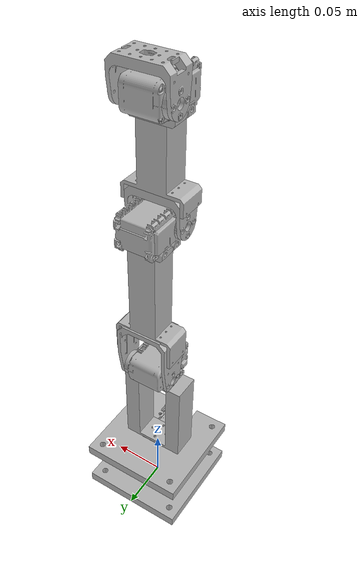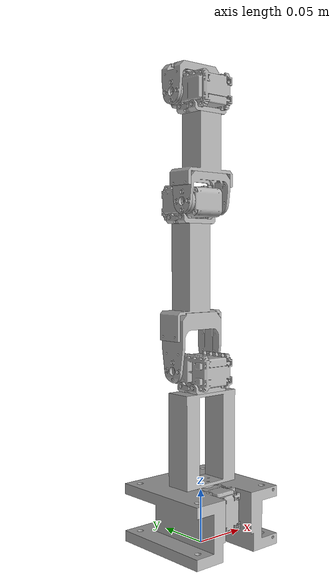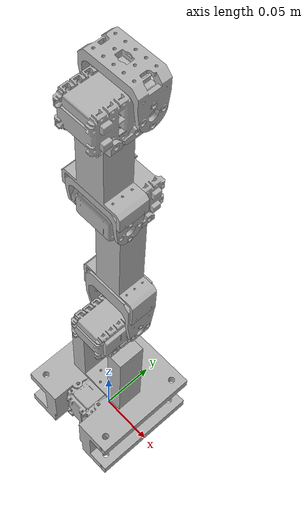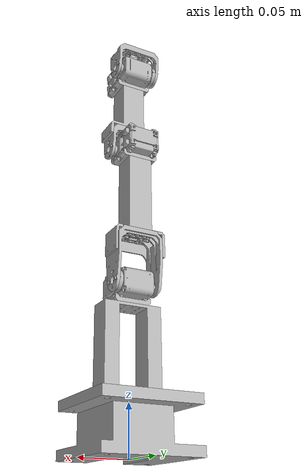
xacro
<?xml version="1.0" ?>
<robot name="project" xmlns:xacro="http://www.ros.org/wiki/xacro">

<xacro:include filename="$(find project_description)/urdf/materials.xacro" />
<xacro:include filename="$(find project_description)/urdf/project.trans" />
<xacro:include filename="$(find project_description)/urdf/project.gazebo" />
<link name="base_link">
   <inertial>
    <origin rpy="0 0 0" xyz="-8.159882890201435e-06 0.0018720901296738887 	0.028401776657947974"/>
    <mass value="0.25731288935459595"/>
    <inertia ixx="0.00028" ixy="-0.0" ixz="0.0" iyy="0.000293" iyz="2e-06" izz="0.000394"/>
  </inertial>
  <visual>
    <origin rpy="0 0 0" xyz="0 0 0"/>
    <geometry>
      <mesh filename="package://project_description/meshes/base_link.stl" scale="0.001 0.001 0.001"/>
    </geometry>
    <material name="silver"/>
  </visual>
  <collision>
    <origin rpy="0 0 0" xyz="0 0 0"/>
    <geometry>
      <mesh filename="package://project_description/meshes/base_link.stl" scale="0.001 0.001 0.001"/>
    </geometry>
  </collision>
</link>

<link name="world"/> <joint name="fixed" type="fixed"> <parent link="world"/> <child link="base_link"/> </joint>

<link name="servo_1_1">
  <inertial>
    <origin rpy="0 0 0" xyz="-0.013531090545161474 -0.006262306013307227 -0.014941431109363447"/>
    <mass value="0.042440875020205084"/>
    <inertia ixx="1.2e-05" ixy="-0.0" ixz="0.0" iyy="7e-06" iyz="-0.0" izz="1e-05"/>
  </inertial>
  <visual>
    <origin rpy="0 0 0" xyz="-0.0135 0.0087 -0.052"/>
    <geometry>
      <mesh filename="package://project_description/meshes/servo_1_1.stl" scale="0.001 0.001 0.001"/>
    </geometry>
    <material name="silver"/>
  </visual>
  <collision>
    <origin rpy="0 0 0" xyz="-0.0135 0.0087 -0.052"/>
    <geometry>
      <mesh filename="package://project_description/meshes/servo_1_1.stl" scale="0.001 0.001 0.001"/>
    </geometry>
  </collision>
</link>

<link name="link_base_1">
  <inertial>
    <origin rpy="0 0 0" xyz="-1.1292332889406204e-16 6.938893903907228e-18 0.04305282835997951"/>
    <mass value="0.5413366704938997"/>
    <inertia ixx="0.000401" ixy="0.0" ixz="0.0" iyy="0.000641" iyz="0.0" izz="0.000297"/>
  </inertial>
  <visual>
    <origin rpy="0 0 0" xyz="0.0 0.0022 -0.057"/>
    <geometry>
      <mesh filename="package://project_description/meshes/link_base_1.stl" scale="0.001 0.001 0.001"/>
    </geometry>
    <material name="silver"/>
  </visual>
  <collision>
    <origin rpy="0 0 0" xyz="0.0 0.0022 -0.057"/>
    <geometry>
      <mesh filename="package://project_description/meshes/link_base_1.stl" scale="0.001 0.001 0.001"/>
    </geometry>
  </collision>
</link>

<link name="lid_1_1">
  <inertial>
    <origin rpy="0 0 0" xyz="0.007999999999997995 -0.0079824826444489 0.0023973587524111772"/>
    <mass value="0.025169985058356388"/>
    <inertia ixx="2e-06" ixy="0.0" ixz="-0.0" iyy="4e-06" iyz="-0.0" izz="5e-06"/>
  </inertial>
  <visual>
    <origin rpy="0 0 0" xyz="0.008 -0.0058 -0.143"/>
    <geometry>
      <mesh filename="package://project_description/meshes/lid_1_1.stl" scale="0.001 0.001 0.001"/>
    </geometry>
    <material name="silver"/>
  </visual>
  <collision>
    <origin rpy="0 0 0" xyz="0.008 -0.0058 -0.143"/>
    <geometry>
      <mesh filename="package://project_description/meshes/lid_1_1.stl" scale="0.001 0.001 0.001"/>
    </geometry>
  </collision>
</link>

<link name="servo_2_1">
  <inertial>
    <origin rpy="0 0 0" xyz="-0.014941431109363601 -0.006262306013307236 0.013531090545161384"/>
    <mass value="0.042440875020205084"/>
    <inertia ixx="1e-05" ixy="-0.0" ixz="-0.0" iyy="7e-06" iyz="0.0" izz="1.2e-05"/>
  </inertial>
  <visual>
    <origin rpy="0 0 0" xyz="-0.016 -0.0058 -0.1485"/>
    <geometry>
      <mesh filename="package://project_description/meshes/servo_2_1.stl" scale="0.001 0.001 0.001"/>
    </geometry>
    <material name="silver"/>
  </visual>
  <collision>
    <origin rpy="0 0 0" xyz="-0.016 -0.0058 -0.1485"/>
    <geometry>
      <mesh filename="package://project_description/meshes/servo_2_1.stl" scale="0.001 0.001 0.001"/>
    </geometry>
  </collision>
</link>

<link name="large_joint_1">
  <inertial>
    <origin rpy="0 0 0" xyz="-0.020999999999999405 -0.0005898483098249752 0.03170002402810718"/>
    <mass value="0.10327033828868784"/>
    <inertia ixx="4.1e-05" ixy="0.0" ixz="0.0" iyy="7.2e-05" iyz="1e-06" izz="4.7e-05"/>
  </inertial>
  <visual>
    <origin rpy="0 0 0" xyz="-0.021 -0.0123 -0.162"/>
    <geometry>
      <mesh filename="package://project_description/meshes/large_joint_1.stl" scale="0.001 0.001 0.001"/>
    </geometry>
    <material name="silver"/>
  </visual>
  <collision>
    <origin rpy="0 0 0" xyz="-0.021 -0.0123 -0.162"/>
    <geometry>
      <mesh filename="package://project_description/meshes/large_joint_1.stl" scale="0.001 0.001 0.001"/>
    </geometry>
  </collision>
</link>

<link name="large_link_1">
  <inertial>
    <origin rpy="0 0 0" xyz="0.014999232156843035 -0.00800003109143909 0.03128732122507877"/>
    <mass value="0.2087858080195849"/>
    <inertia ixx="0.000214" ixy="0.0" ixz="-0.0" iyy="0.000236" iyz="-0.0" izz="5.2e-05"/>
  </inertial>
  <visual>
    <origin rpy="0 0 0" xyz="0.016 -0.0203 -0.214"/>
    <geometry>
      <mesh filename="package://project_description/meshes/large_link_1.stl" scale="0.001 0.001 0.001"/>
    </geometry>
    <material name="silver"/>
  </visual>
  <collision>
    <origin rpy="0 0 0" xyz="0.016 -0.0203 -0.214"/>
    <geometry>
      <mesh filename="package://project_description/meshes/large_link_1.stl" scale="0.001 0.001 0.001"/>
    </geometry>
  </collision>
</link>

<link name="lid_2_1">
  <inertial>
    <origin rpy="0 0 0" xyz="0.008000000104306291 -0.007982482793460496 0.0023973587524112605"/>
    <mass value="0.025169985058356388"/>
    <inertia ixx="2e-06" ixy="0.0" ixz="-0.0" iyy="4e-06" iyz="-0.0" izz="5e-06"/>
  </inertial>
  <visual>
    <origin rpy="0 0 0" xyz="0.009 -0.0203 -0.297"/>
    <geometry>
      <mesh filename="package://project_description/meshes/lid_2_1.stl" scale="0.001 0.001 0.001"/>
    </geometry>
    <material name="silver"/>
  </visual>
  <collision>
    <origin rpy="0 0 0" xyz="0.009 -0.0203 -0.297"/>
    <geometry>
      <mesh filename="package://project_description/meshes/lid_2_1.stl" scale="0.001 0.001 0.001"/>
    </geometry>
  </collision>
</link>

<link name="servo_3_1">
  <inertial>
    <origin rpy="0 0 0" xyz="0.014941431213671695 0.006262305864295671 0.013531090545161495"/>
    <mass value="0.042440875020205084"/>
    <inertia ixx="1e-05" ixy="-0.0" ixz="0.0" iyy="7e-06" iyz="-0.0" izz="1.2e-05"/>
  </inertial>
  <visual>
    <origin rpy="0 0 0" xyz="0.017 -0.0043 -0.3025"/>
    <geometry>
      <mesh filename="package://project_description/meshes/servo_3_1.stl" scale="0.001 0.001 0.001"/>
    </geometry>
    <material name="silver"/>
  </visual>
  <collision>
    <origin rpy="0 0 0" xyz="0.017 -0.0043 -0.3025"/>
    <geometry>
      <mesh filename="package://project_description/meshes/servo_3_1.stl" scale="0.001 0.001 0.001"/>
    </geometry>
  </collision>
</link>

<link name="small_joint_1_1">
  <inertial>
    <origin rpy="0 0 0" xyz="0.021000000104309097 -2.2850135427557663e-06 0.015080113868090939"/>
    <mass value="0.057238335357429025"/>
    <inertia ixx="1e-05" ixy="0.0" ixz="0.0" iyy="2.5e-05" iyz="0.0" izz="2.3e-05"/>
  </inertial>
  <visual>
    <origin rpy="0 0 0" xyz="0.022 0.0022 -0.316"/>
    <geometry>
      <mesh filename="package://project_description/meshes/small_joint_1_1.stl" scale="0.001 0.001 0.001"/>
    </geometry>
    <material name="silver"/>
  </visual>
  <collision>
    <origin rpy="0 0 0" xyz="0.022 0.0022 -0.316"/>
    <geometry>
      <mesh filename="package://project_description/meshes/small_joint_1_1.stl" scale="0.001 0.001 0.001"/>
    </geometry>
  </collision>
</link>

<link name="small_link_1">
  <inertial>
    <origin rpy="0 0 0" xyz="-0.016001132069733005 0.007999954324398578 0.02051648591852201"/>
    <mass value="0.14166831090592102"/>
    <inertia ixx="6.3e-05" ixy="0.0" ixz="-0.0" iyy="7.7e-05" iyz="-0.0" izz="3.3e-05"/>
  </inertial>
  <visual>
    <origin rpy="0 0 0" xyz="-0.015 0.0102 -0.342"/>
    <geometry>
      <mesh filename="package://project_description/meshes/small_link_1.stl" scale="0.001 0.001 0.001"/>
    </geometry>
    <material name="silver"/>
  </visual>
  <collision>
    <origin rpy="0 0 0" xyz="-0.015 0.0102 -0.342"/>
    <geometry>
      <mesh filename="package://project_description/meshes/small_link_1.stl" scale="0.001 0.001 0.001"/>
    </geometry>
  </collision>
</link>

<link name="lid_3_1">
  <inertial>
    <origin rpy="0 0 0" xyz="0.007999999746678494 -0.007982482704053535 0.002397358752411205"/>
    <mass value="0.025169985058356388"/>
    <inertia ixx="2e-06" ixy="0.0" ixz="-0.0" iyy="4e-06" iyz="-0.0" izz="5e-06"/>
  </inertial>
  <visual>
    <origin rpy="0 0 0" xyz="0.009 -0.0058 -0.395"/>
    <geometry>
      <mesh filename="package://project_description/meshes/lid_3_1.stl" scale="0.001 0.001 0.001"/>
    </geometry>
    <material name="silver"/>
  </visual>
  <collision>
    <origin rpy="0 0 0" xyz="0.009 -0.0058 -0.395"/>
    <geometry>
      <mesh filename="package://project_description/meshes/lid_3_1.stl" scale="0.001 0.001 0.001"/>
    </geometry>
  </collision>
</link>

<link name="servo_4_1">
  <inertial>
    <origin rpy="0 0 0" xyz="0.014941430856043898 -0.006262306072911869 0.013468909454838751"/>
    <mass value="0.042440875020205084"/>
    <inertia ixx="1e-05" ixy="0.0" ixz="-0.0" iyy="7e-06" iyz="-0.0" izz="1.2e-05"/>
  </inertial>
  <visual>
    <origin rpy="0 0 0" xyz="0.017 -0.0058 -0.4005"/>
    <geometry>
      <mesh filename="package://project_description/meshes/servo_4_1.stl" scale="0.001 0.001 0.001"/>
    </geometry>
    <material name="silver"/>
  </visual>
  <collision>
    <origin rpy="0 0 0" xyz="0.017 -0.0058 -0.4005"/>
    <geometry>
      <mesh filename="package://project_description/meshes/servo_4_1.stl" scale="0.001 0.001 0.001"/>
    </geometry>
  </collision>
</link>

<link name="small_link_2_1">
  <inertial>
    <origin rpy="0 0 0" xyz="0.020999999746681302 -2.2849241358390004e-06 0.015080113868091105"/>
    <mass value="0.057238335357429025"/>
    <inertia ixx="1e-05" ixy="0.0" ixz="0.0" iyy="2.5e-05" iyz="0.0" izz="2.3e-05"/>
  </inertial>
  <visual>
    <origin rpy="0 0 0" xyz="0.022 -0.0123 -0.414"/>
    <geometry>
      <mesh filename="package://project_description/meshes/small_link_2_1.stl" scale="0.001 0.001 0.001"/>
    </geometry>
    <material name="silver"/>
  </visual>
  <collision>
    <origin rpy="0 0 0" xyz="0.022 -0.0123 -0.414"/>
    <geometry>
      <mesh filename="package://project_description/meshes/small_link_2_1.stl" scale="0.001 0.001 0.001"/>
    </geometry>
  </collision>
</link>

<joint name="servo_1_base_link" type="fixed">
  <origin rpy="0 0 0" xyz="0.0135 -0.0087 0.052"/>
  <parent link="base_link"/>
  <child link="servo_1_1"/>
</joint>

<joint name="link_base_servo_1" type="revolute">
  <origin rpy="0 0 0" xyz="-0.0135 0.0065 0.005"/>
  <parent link="servo_1_1"/>
  <child link="link_base_1"/>
  <axis xyz="0.0 -0.0 1.0"/>
  <limit upper="1.54" lower="-1.54" effort="100" velocity="0"/>
</joint>

<joint name="lid_1_link_base" type="fixed">
  <origin rpy="0 0 0" xyz="-0.008 0.008 0.086"/>
  <parent link="link_base_1"/>
  <child link="lid_1_1"/>
</joint>

<joint name="servo_2_lid_1" type="fixed">
  <origin rpy="0 0 0" xyz="0.024 0.0 0.0055"/>
  <parent link="lid_1_1"/>
  <child link="servo_2_1"/>
</joint>

<joint name="large_joint_servo_2" type="revolute">
  <origin rpy="0 0 0" xyz="0.005 0.0065 0.0135"/>
  <parent link="servo_2_1"/>
  <child link="large_joint_1"/>
  <axis xyz="1.0 0.0 -0.0"/>
  <limit upper="1.54" lower="-1.54" effort="100" velocity="0"/>
</joint>

<joint name="large_link_large_joint" type="fixed">
  <origin rpy="0 0 0" xyz="-0.037 0.008 0.052"/>
  <parent link="large_joint_1"/>
  <child link="large_link_1"/>
</joint>

<joint name="lid_2_large_link" type="fixed">
  <origin rpy="0 0 0" xyz="0.007 0.0 0.083"/>
  <parent link="large_link_1"/>
  <child link="lid_2_1"/>
</joint>

<joint name="servo_3_lid_2" type="fixed">
  <origin rpy="0 0 0" xyz="-0.008 -0.016 0.0055"/>
  <parent link="lid_2_1"/>
  <child link="servo_3_1"/>
</joint>

<joint name="small_joint_1_servo_3" type="revolute">
  <origin rpy="0 0 0" xyz="-0.005 -0.0065 0.0135"/>
  <parent link="servo_3_1"/>
  <child link="small_joint_1_1"/>
  <axis xyz="-1.0 0.0 -0.0"/>
  <limit upper="1.54" lower="-1.54" effort="100" velocity="0"/>
</joint>

<joint name="smal_link_small_joint_1" type="fixed">
  <origin rpy="0 0 0" xyz="0.037 -0.008 0.026"/>
  <parent link="small_joint_1_1"/>
  <child link="small_link_1"/>
</joint>

<joint name="lid_3_small_link" type="fixed">
  <origin rpy="0 0 0" xyz="-0.024 0.016 0.053"/>
  <parent link="small_link_1"/>
  <child link="lid_3_1"/>
</joint>

<joint name="servo_4_lid_3" type="fixed">
  <origin rpy="0 0 0" xyz="-0.008 0.0 0.0055"/>
  <parent link="lid_3_1"/>
  <child link="servo_4_1"/>
</joint>

<joint name="small_joint_2_servo_4" type="revolute">
  <origin rpy="0 0 0" xyz="-0.005 0.0065 0.0135"/>
  <parent link="servo_4_1"/>
  <child link="small_link_2_1"/>
  <axis xyz="-1.0 0.0 0.0"/>
  <limit upper="1.54" lower="-1.54" effort="100" velocity="0"/>
</joint>

</robot>

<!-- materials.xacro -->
<robot name="project" xmlns:xacro="http://www.ros.org/wiki/xacro" >

<material name="silver">
  <color rgba="0.700 0.700 0.700 1.000"/>
</material>

</robot>

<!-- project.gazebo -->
<robot name="project" xmlns:xacro="http://www.ros.org/wiki/xacro" >

<xacro:property name="body_color" value="Gazebo/Silver" />

<gazebo>
  <plugin name="gazebo_ros_control" filename="libgazebo_ros_control.so">
    <robotNamespace>/project</robotNamespace>
  </plugin>
</gazebo>

<gazebo reference="base_link">
  <material>${body_color}</material>
  <mu1>0.2</mu1>
  <mu2>0.2</mu2>
  <selfCollide>true</selfCollide>
  <gravity>true</gravity>
</gazebo>

<gazebo reference="servo_1_1">
  <material>${body_color}</material>
  <mu1>0.2</mu1>
  <mu2>0.2</mu2>
  <selfCollide>true</selfCollide>
</gazebo>

<gazebo reference="link_base_1">
  <material>${body_color}</material>
  <mu1>0.2</mu1>
  <mu2>0.2</mu2>
  <selfCollide>true</selfCollide>
</gazebo>

<gazebo reference="lid_1_1">
  <material>${body_color}</material>
  <mu1>0.2</mu1>
  <mu2>0.2</mu2>
  <selfCollide>true</selfCollide>
</gazebo>

<gazebo reference="servo_2_1">
  <material>${body_color}</material>
  <mu1>0.2</mu1>
  <mu2>0.2</mu2>
  <selfCollide>true</selfCollide>
</gazebo>

<gazebo reference="large_joint_1">
  <material>${body_color}</material>
  <mu1>0.2</mu1>
  <mu2>0.2</mu2>
  <selfCollide>true</selfCollide>
</gazebo>

<gazebo reference="large_link_1">
  <material>${body_color}</material>
  <mu1>0.2</mu1>
  <mu2>0.2</mu2>
  <selfCollide>true</selfCollide>
</gazebo>

<gazebo reference="lid_2_1">
  <material>${body_color}</material>
  <mu1>0.2</mu1>
  <mu2>0.2</mu2>
  <selfCollide>true</selfCollide>
</gazebo>

<gazebo reference="servo_3_1">
  <material>${body_color}</material>
  <mu1>0.2</mu1>
  <mu2>0.2</mu2>
  <selfCollide>true</selfCollide>
</gazebo>

<gazebo reference="small_joint_1_1">
  <material>${body_color}</material>
  <mu1>0.2</mu1>
  <mu2>0.2</mu2>
  <selfCollide>true</selfCollide>
</gazebo>

<gazebo reference="small_link_1">
  <material>${body_color}</material>
  <mu1>0.2</mu1>
  <mu2>0.2</mu2>
  <selfCollide>true</selfCollide>
</gazebo>

<gazebo reference="lid_3_1">
  <material>${body_color}</material>
  <mu1>0.2</mu1>
  <mu2>0.2</mu2>
  <selfCollide>true</selfCollide>
</gazebo>

<gazebo reference="servo_4_1">
  <material>${body_color}</material>
  <mu1>0.2</mu1>
  <mu2>0.2</mu2>
  <selfCollide>true</selfCollide>
</gazebo>

<gazebo reference="small_link_2_1">
  <material>${body_color}</material>
  <mu1>0.2</mu1>
  <mu2>0.2</mu2>
  <selfCollide>true</selfCollide>
</gazebo>

</robot>
